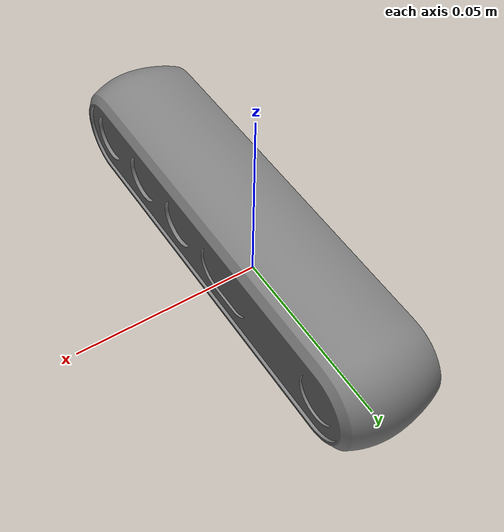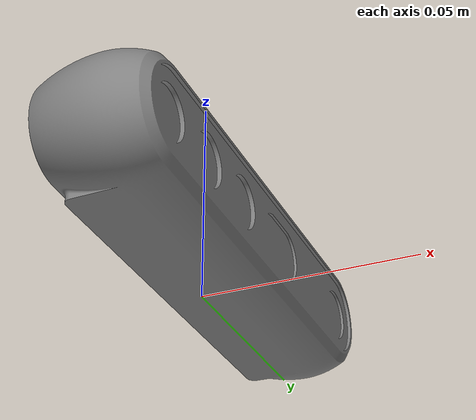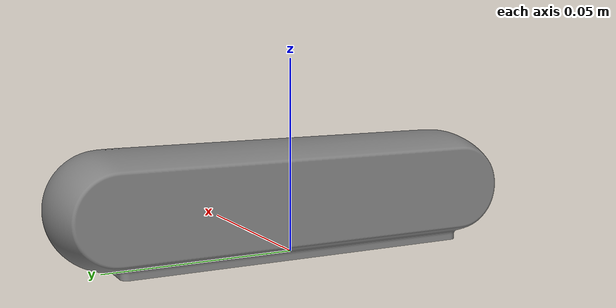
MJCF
<?xml version="1.0" encoding="utf-8"?>
<mujoco model="link">
  <compiler angle="radian" meshdir="assets" autolimits="true" inertiafromgeom="false" fusestatic="false"/>
  <option timestep="0.001" integrator="implicitfast" solver="Newton" iterations="50" ls_iterations="10" gravity="0 0 -9.81"/>
  <default>
    <geom density="0"/>
    <default class="visual">
      <geom contype="0" conaffinity="0" group="2" density="0"/>
    </default>
    <default class="collision">
      <geom group="3" contype="1" conaffinity="1" condim="3" friction="1.0 0.005 0.0001" density="0"/>
    </default>
    <default class="wheel">
      <geom group="3" contype="1" conaffinity="1" condim="3" friction="1.2 0.005 0.0001" density="0"/>
    </default>
    <default class="finger_pad">
      <geom group="3" contype="1" conaffinity="1" condim="4" friction="1.0 0.005 0.0001" solref="0.02 1" solimp="0.9 0.95 0.001" density="0"/>
    </default>
    <default class="sensor_collision">
      <geom group="4" contype="1" conaffinity="1" density="0"/>
    </default>
  </default>
  <asset>
    <mesh name="d455" file="visual/d455.stl"/>
  </asset>
  <worldbody>
    <body name="link" pos="0.01115 0.0475 0.0145">
      <geom class="visual" type="mesh" mesh="d455" pos="0.00465 -0.0475 0" quat="0.5 0.5 0.5 0.5"/>
      <geom class="sensor_collision" type="box" size="0.013 0.062 0.0145" pos="-0.00845 -0.0475 0"/>
      <site name="depth_frame" size="0.001" pos="0 0 0"/>
      <site name="depth_optical_frame" size="0.001" pos="0 0 0" quat="0.5 -0.5 0.5 -0.5"/>
      <site name="infra1_frame" size="0.001" pos="0 0 0"/>
      <site name="infra1_optical_frame" size="0.001" pos="0 0 0" quat="0.5 -0.5 0.5 -0.5"/>
      <site name="infra2_frame" size="0.001" pos="0 -0.095 0"/>
      <site name="infra2_optical_frame" size="0.001" pos="0 -0.095 0" quat="0.5 -0.5 0.5 -0.5"/>
      <site name="color_frame" size="0.001" pos="0 -0.059 0"/>
      <site name="color_optical_frame" size="0.001" pos="0 -0.059 0" quat="0.5 -0.5 0.5 -0.5"/>
      <camera name="color" pos="0.005 -0.059 0" quat="-0.5 0.5 0.5 -0.5" fovy="55" resolution="1280 720"/>
      <camera name="depth" pos="0.005 0 0" quat="-0.5 0.5 0.5 -0.5" fovy="55" resolution="1280 720"/>
    </body>
  </worldbody>
</mujoco>
